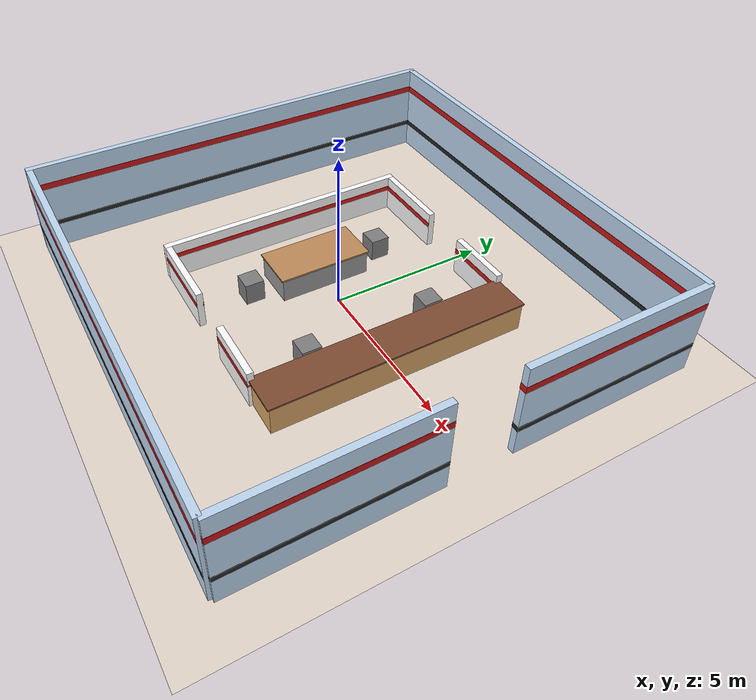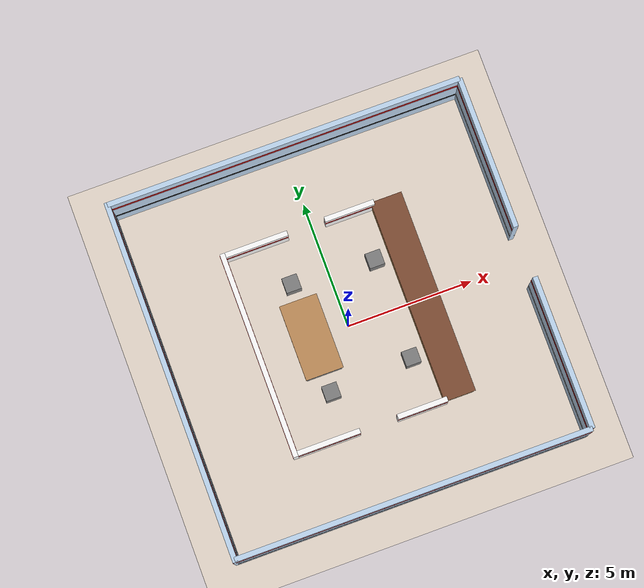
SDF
<sdf version='1.10'>
  <world name='cocina_robotica_recreada'>
    <physics name='1ms' type='ignored'>
      <max_step_size>0.001</max_step_size>
      <real_time_factor>1</real_time_factor>
      <real_time_update_rate>1000</real_time_update_rate>
    </physics>

    <plugin name='gz::sim::systems::Physics' filename='gz-sim-physics-system'/>
    <plugin name='gz::sim::systems::UserCommands' filename='gz-sim-user-commands-system'/>
    <plugin name='gz::sim::systems::SceneBroadcaster' filename='gz-sim-scene-broadcaster-system'/>

    <scene>
      <ambient>0.8 0.8 0.8 1</ambient>
      <background>0.9 0.9 0.9 1</background>
      <shadows>true</shadows>
    </scene>

    <light name='luz_ambiente' type='directional'>
      <pose>0 0 15 0 0 0</pose>
      <cast_shadows>true</cast_shadows>
      <intensity>0.8</intensity>
      <direction>-0.5 0.2 -0.9</direction>
      <diffuse>1 1 1 1</diffuse>
      <specular>0.2 0.2 0.2 1</specular>
    </light>

    <model name='ground_plane'>
      <static>true</static>
      <link name='link'>
        <collision name='collision'>
          <geometry><plane><normal>0 0 1</normal><size>20 20</size></plane></geometry>
        </collision>
        <visual name='visual'>
          <geometry><plane><normal>0 0 1</normal><size>20 20</size></plane></geometry>
          <material>
            <ambient>0.88 0.83 0.78 1</ambient>
            <diffuse>0.9 0.85 0.8 1</diffuse>
          </material>
        </visual>
      </link>
    </model>

    <model name='pared_norte'>
      <static>true</static>
      <pose>0 7 1.5 0 0 0</pose>
      <link name='link'>
        <collision name='col'><geometry><box><size>14 0.2 3.0</size></box></geometry></collision>
        <visual name='vis_base'>
          <geometry><box><size>14 0.2 3.0</size></box></geometry>
          <material><ambient>0.75 0.85 0.95 1</ambient><diffuse>0.75 0.85 0.95 1</diffuse></material>
        </visual>
        <visual name='vis_franja_roja'>
          <pose>0 0 0.8 0 0 0</pose> <geometry><box><size>14 0.22 0.2</size></box></geometry>
          <material><ambient>0.7 0.1 0.1 1</ambient><diffuse>0.8 0.1 0.1 1</diffuse></material>
        </visual>
        <visual name='vis_franja_negra'>
          <pose>0 0 -0.6 0 0 0</pose> <geometry><box><size>14 0.22 0.15</size></box></geometry>
          <material><ambient>0.1 0.1 0.1 1</ambient><diffuse>0.15 0.15 0.15 1</diffuse></material>
        </visual>
      </link>
    </model>

    <model name='pared_sur'>
      <static>true</static>
      <pose>0 -7 1.5 0 0 0</pose>
      <link name='link'>
        <collision name='col'><geometry><box><size>14 0.2 3.0</size></box></geometry></collision>
        <visual name='vis_base'>
          <geometry><box><size>14 0.2 3.0</size></box></geometry>
          <material><ambient>0.75 0.85 0.95 1</ambient><diffuse>0.75 0.85 0.95 1</diffuse></material>
        </visual>
        <visual name='vis_franja_roja'>
          <pose>0 0 0.8 0 0 0</pose>
          <geometry><box><size>14 0.22 0.2</size></box></geometry>
          <material><ambient>0.7 0.1 0.1 1</ambient><diffuse>0.8 0.1 0.1 1</diffuse></material>
        </visual>
        <visual name='vis_franja_negra'>
          <pose>0 0 -0.6 0 0 0</pose>
          <geometry><box><size>14 0.22 0.15</size></box></geometry>
          <material><ambient>0.1 0.1 0.1 1</ambient><diffuse>0.15 0.15 0.15 1</diffuse></material>
        </visual>
      </link>
    </model>

    <model name='pared_oeste'>
      <static>true</static>
      <pose>-7 0 1.5 0 0 0</pose>
      <link name='link'>
        <collision name='col'><geometry><box><size>0.2 14.2 3.0</size></box></geometry></collision>
        <visual name='vis_base'>
          <geometry><box><size>0.2 14.2 3.0</size></box></geometry>
          <material><ambient>0.75 0.85 0.95 1</ambient><diffuse>0.75 0.85 0.95 1</diffuse></material>
        </visual>
        <visual name='vis_franja_roja'>
          <pose>0 0 0.8 0 0 0</pose>
          <geometry><box><size>0.22 14.2 0.2</size></box></geometry>
          <material><ambient>0.7 0.1 0.1 1</ambient><diffuse>0.8 0.1 0.1 1</diffuse></material>
        </visual>
        <visual name='vis_franja_negra'>
          <pose>0 0 -0.6 0 0 0</pose>
          <geometry><box><size>0.22 14.2 0.15</size></box></geometry>
          <material><ambient>0.1 0.1 0.1 1</ambient><diffuse>0.15 0.15 0.15 1</diffuse></material>
        </visual>
      </link>
    </model>

    <model name='pared_este_norte'>
      <static>true</static>
      <pose>7 4 1.5 0 0 0</pose> <link name='link'>
        <collision name='col'><geometry><box><size>0.2 6.0 3.0</size></box></geometry></collision>
        <visual name='vis_base'>
          <geometry><box><size>0.2 6.0 3.0</size></box></geometry>
          <material><ambient>0.75 0.85 0.95 1</ambient><diffuse>0.75 0.85 0.95 1</diffuse></material>
        </visual>
        <visual name='vis_franja_roja'>
          <pose>0 0 0.8 0 0 0</pose><geometry><box><size>0.22 6.0 0.2</size></box></geometry>
          <material><ambient>0.7 0.1 0.1 1</ambient><diffuse>0.8 0.1 0.1 1</diffuse></material>
        </visual>
        <visual name='vis_franja_negra'>
          <pose>0 0 -0.6 0 0 0</pose><geometry><box><size>0.22 6.0 0.15</size></box></geometry>
          <material><ambient>0.1 0.1 0.1 1</ambient><diffuse>0.15 0.15 0.15 1</diffuse></material>
        </visual>
      </link>
    </model>

    <model name='pared_este_sur'>
      <static>true</static>
      <pose>7 -4 1.5 0 0 0</pose> <link name='link'>
        <collision name='col'><geometry><box><size>0.2 6.0 3.0</size></box></geometry></collision>
        <visual name='vis_base'>
          <geometry><box><size>0.2 6.0 3.0</size></box></geometry>
          <material><ambient>0.75 0.85 0.95 1</ambient><diffuse>0.75 0.85 0.95 1</diffuse></material>
        </visual>
        <visual name='vis_franja_roja'>
          <pose>0 0 0.8 0 0 0</pose><geometry><box><size>0.22 6.0 0.2</size></box></geometry>
          <material><ambient>0.7 0.1 0.1 1</ambient><diffuse>0.8 0.1 0.1 1</diffuse></material>
        </visual>
        <visual name='vis_franja_negra'>
          <pose>0 0 -0.6 0 0 0</pose><geometry><box><size>0.22 6.0 0.15</size></box></geometry>
          <material><ambient>0.1 0.1 0.1 1</ambient><diffuse>0.15 0.15 0.15 1</diffuse></material>
        </visual>
      </link>
    </model>

    <model name='barra_carga'>
      <static>true</static>
      <pose>3 0 0.45 0 0 0</pose>
      <link name='link'>
        <collision name='col_base'><geometry><box><size>1.2 8.0 0.9</size></box></geometry></collision>
        <visual name='vis_base'>
          <geometry><box><size>1.2 8.0 0.9</size></box></geometry>
          <material><ambient>0.85 0.65 0.4 1</ambient><diffuse>0.85 0.65 0.4 1</diffuse></material>
        </visual>
        <visual name='vis_top'>
          <pose>0 0 0.46 0 0 0</pose>
          <geometry><box><size>1.25 8.1 0.05</size></box></geometry>
          <material><ambient>0.45 0.25 0.15 1</ambient><diffuse>0.5 0.3 0.2 1</diffuse></material>
        </visual>
      </link>
    </model>

    <model name='mesa_preparacion'>
      <static>true</static>
      <pose>-1.5 0 0.4 0 0 0</pose> <link name='link'>
        <collision name='col'><geometry><box><size>1.5 3.0 0.8</size></box></geometry></collision>
        <visual name='vis_base'>
          <geometry><box><size>1.4 2.9 0.8</size></box></geometry>
          <material><ambient>0.6 0.6 0.6 1</ambient><diffuse>0.6 0.6 0.6 1</diffuse></material>
        </visual>
        <visual name='vis_top'>
          <pose>0 0 0.4 0 0 0</pose>
          <geometry><box><size>1.5 3.0 0.05</size></box></geometry>
          <material><ambient>0.7 0.5 0.3 1</ambient><diffuse>0.75 0.55 0.35 1</diffuse></material>
        </visual>
      </link>
    </model>

    <model name='semimuro_izq_frontal'>
      <static>true</static>
      <pose>1.5 4 0.6 0 0 0</pose>
      <link name='link'>
        <collision name='col'><geometry><box><size>2.0 0.2 1.2</size></box></geometry></collision>
        <visual name='vis_blanco'>
          <geometry><box><size>2.0 0.2 1.2</size></box></geometry>
          <material><ambient>0.95 0.95 0.95 1</ambient><diffuse>1 1 1 1</diffuse></material>
        </visual>
        <visual name='vis_franja_roja_muro'>
          <pose>0 0 0.2 0 0 0</pose>
          <geometry><box><size>2.0 0.22 0.15</size></box></geometry>
          <material><ambient>0.8 0.1 0.1 1</ambient><diffuse>0.85 0.1 0.1 1</diffuse></material>
        </visual>
      </link>
    </model>

    <model name='semimuro_izq_trasero'>
      <static>true</static>
      <pose>-2.25 4 0.6 0 0 0</pose>
      <link name='link'>
        <collision name='col'><geometry><box><size>2.5 0.2 1.2</size></box></geometry></collision>
        <visual name='vis_blanco'>
          <geometry><box><size>2.5 0.2 1.2</size></box></geometry>
          <material><ambient>0.95 0.95 0.95 1</ambient><diffuse>1 1 1 1</diffuse></material>
        </visual>
        <visual name='vis_franja_roja_muro'>
          <pose>0 0 0.2 0 0 0</pose>
          <geometry><box><size>2.5 0.22 0.15</size></box></geometry>
          <material><ambient>0.8 0.1 0.1 1</ambient><diffuse>0.85 0.1 0.1 1</diffuse></material>
        </visual>
      </link>
    </model>

    <model name='semimuro_der_frontal'>
      <static>true</static>
      <pose>1.5 -4 0.6 0 0 0</pose>
      <link name='link'>
        <collision name='col'><geometry><box><size>2.0 0.2 1.2</size></box></geometry></collision>
        <visual name='vis_blanco'>
          <geometry><box><size>2.0 0.2 1.2</size></box></geometry>
          <material><ambient>0.95 0.95 0.95 1</ambient><diffuse>1 1 1 1</diffuse></material>
        </visual>
        <visual name='vis_franja_roja_muro'>
          <pose>0 0 0.2 0 0 0</pose>
          <geometry><box><size>2.0 0.22 0.15</size></box></geometry>
          <material><ambient>0.8 0.1 0.1 1</ambient><diffuse>0.85 0.1 0.1 1</diffuse></material>
        </visual>
      </link>
    </model>

    <model name='semimuro_der_trasero'>
      <static>true</static>
      <pose>-2.25 -4 0.6 0 0 0</pose>
      <link name='link'>
        <collision name='col'><geometry><box><size>2.5 0.2 1.2</size></box></geometry></collision>
        <visual name='vis_blanco'>
          <geometry><box><size>2.5 0.2 1.2</size></box></geometry>
          <material><ambient>0.95 0.95 0.95 1</ambient><diffuse>1 1 1 1</diffuse></material>
        </visual>
        <visual name='vis_franja_roja_muro'>
          <pose>0 0 0.2 0 0 0</pose>
          <geometry><box><size>2.5 0.22 0.15</size></box></geometry>
          <material><ambient>0.8 0.1 0.1 1</ambient><diffuse>0.85 0.1 0.1 1</diffuse></material>
        </visual>
      </link>
    </model>

    <model name='semimuro_trasero'>
      <static>true</static>
      <pose>-3.6 0 0.6 0 0 0</pose>
      <link name='link'>
        <collision name='col'><geometry><box><size>0.2 8.2 1.2</size></box></geometry></collision>
        <visual name='vis_blanco'>
          <geometry><box><size>0.2 8.2 1.2</size></box></geometry>
          <material><ambient>0.95 0.95 0.95 1</ambient><diffuse>1 1 1 1</diffuse></material>
        </visual>
        <visual name='vis_franja_roja_muro'>
          <pose>0 0 0.2 0 0 0</pose>
          <geometry><box><size>0.22 8.2 0.15</size></box></geometry>
          <material><ambient>0.8 0.1 0.1 1</ambient><diffuse>0.85 0.1 0.1 1</diffuse></material>
        </visual>
      </link>
    </model>

    <model name='pedestal_brazo_1'>
      <static>true</static>
      <pose>-1.5 2.2 0.35 0 0 0</pose>
      <link name='link'>
        <collision name='col'><geometry><box><size>0.6 0.6 0.7</size></box></geometry></collision>
        <visual name='vis'><geometry><box><size>0.6 0.6 0.7</size></box></geometry><material><ambient>0.5 0.5 0.5 1</ambient><diffuse>0.5 0.5 0.5 1</diffuse></material></visual>
      </link>
    </model>

    <model name='pedestal_brazo_2'>
      <static>true</static>
      <pose>-1.5 -2.2 0.35 0 0 0</pose>
      <link name='link'>
        <collision name='col'><geometry><box><size>0.6 0.6 0.7</size></box></geometry></collision>
        <visual name='vis'><geometry><box><size>0.6 0.6 0.7</size></box></geometry><material><ambient>0.5 0.5 0.5 1</ambient><diffuse>0.5 0.5 0.5 1</diffuse></material></visual>
      </link>
    </model>

    <model name='pedestal_brazo_3'>
      <static>true</static>
      <pose>1.8 2.0 0.35 0 0 0</pose>
      <link name='link'>
        <collision name='col'><geometry><box><size>0.6 0.6 0.7</size></box></geometry></collision>
        <visual name='vis'><geometry><box><size>0.6 0.6 0.7</size></box></geometry><material><ambient>0.5 0.5 0.5 1</ambient><diffuse>0.5 0.5 0.5 1</diffuse></material></visual>
      </link>
    </model>

    <model name='pedestal_brazo_4'>
      <static>true</static>
      <pose>1.8 -2.0 0.35 0 0 0</pose>
      <link name='link'>
        <collision name='col'><geometry><box><size>0.6 0.6 0.7</size></box></geometry></collision>
        <visual name='vis'><geometry><box><size>0.6 0.6 0.7</size></box></geometry><material><ambient>0.5 0.5 0.5 1</ambient><diffuse>0.5 0.5 0.5 1</diffuse></material></visual>
      </link>
    </model>

  </world>
</sdf>
